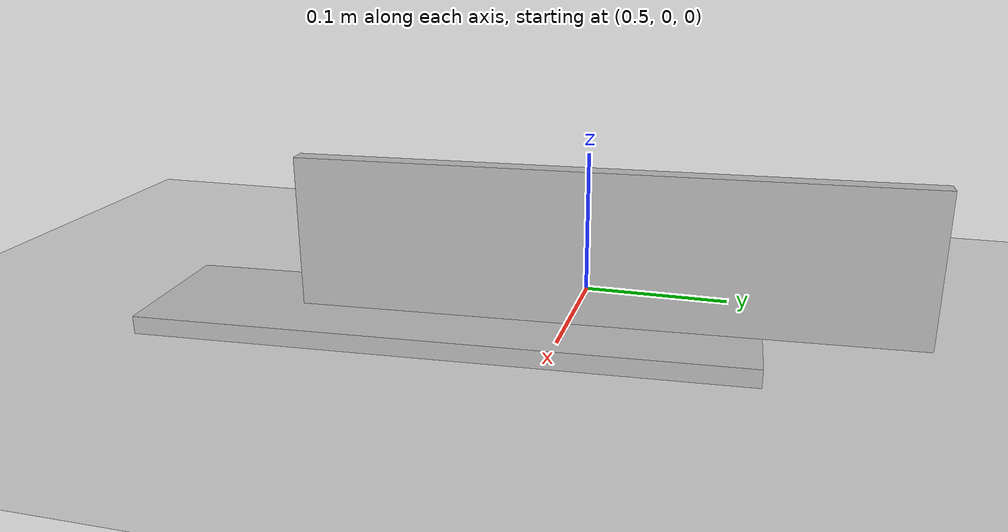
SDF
<sdf version="1.6">
 <world name="default">
  <light name="sun" type="directional">
   <pose>0 0 10 0 -0 0</pose>
   <diffuse>0.8 0.8 0.8 1</diffuse>
   <specular>0.2 0.2 0.2 1</specular>
   <attenuation>
    <range>1000</range>
    <constant>0.9</constant>
    <linear>0.01</linear>
    <quadratic>0.001</quadratic>
   </attenuation>
   <direction>-0.5 0.1 -0.9</direction>
  </light>
  <model name="ground_plane">
   <static>1</static>
   <link name="link">
    <collision name="collision">
     <geometry><plane><normal>0 0 1</normal><size>100 100</size></plane></geometry>
     <surface><friction><ode><mu>100</mu><mu2>50</mu2></ode></friction></surface>
    </collision>
    <visual name="visual">
     <cast_shadows>0</cast_shadows>
     <geometry><plane><normal>0 0 1</normal><size>100 100</size></plane></geometry>
     <material>
      <script><uri>file://media/materials/scripts/gazebo.material</uri><name>Gazebo/Grey</name></script>
     </material>
    </visual>
   </link>
  </model>
  <gravity>0 0 -9.8</gravity>
  <magnetic_field>6e-06 2.3e-05 -4.2e-05</magnetic_field>
  <atmosphere type="adiabatic"/>
  <physics name="default_physics" default="0" type="ode">
   <max_step_size>0.001</max_step_size>
   <real_time_factor>1</real_time_factor>
   <real_time_update_rate>1000</real_time_update_rate>
  </physics>
  <scene><ambient>0.4 0.4 0.4 1</ambient><background>0.7 0.7 0.7 1</background><shadows>1</shadows></scene>
  <spherical_coordinates>
   <surface_model>EARTH_WGS84</surface_model>
   <latitude_deg>0</latitude_deg>
   <longitude_deg>0</longitude_deg>
   <elevation>0</elevation>
   <heading_deg>0</heading_deg>
  </spherical_coordinates>
  <model name="tee_joint">
   <static>1</static>
   <link name="tee_joint">
    <pose>0 0 0.0275 1.571 -0 0</pose>
    <collision name="collision">
     <geometry><mesh><uri>model://tee_joint/mesh/tee_joint.stl</uri></mesh></geometry>
     <surface><friction><ode><mu>2</mu><mu2>2</mu2></ode></friction></surface>
    </collision>
    <inertial>
     <mass>10000</mass>
     <inertia><ixx>1</ixx><ixy>0</ixy><ixz>0</ixz><iyy>1</iyy><iyz>0</iyz><izz>1</izz></inertia>
    </inertial>
    <visual name="visual">
     <geometry><mesh><uri>model://tee_joint/mesh/tee_joint.stl</uri></mesh></geometry>
    </visual>
   </link>
   <pose>0.593181 -0.081566 -0.018822 -0.001629 5.7e-05 -1.51406</pose>
  </model>
 </world>
</sdf>
